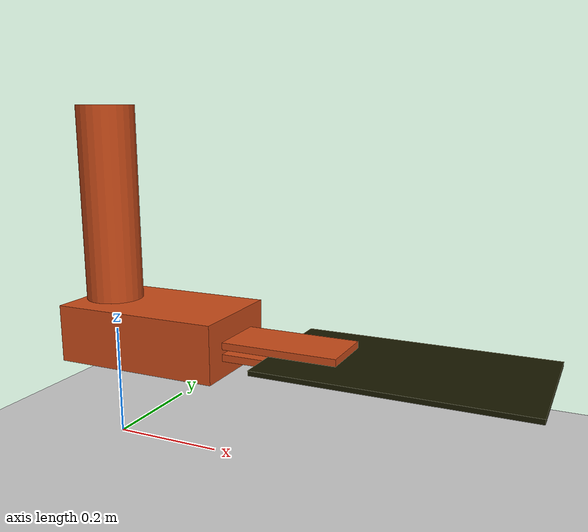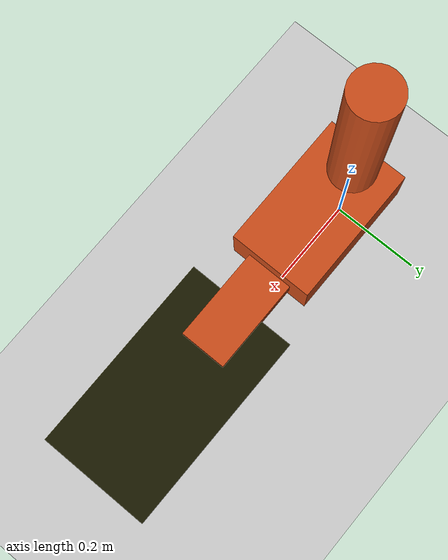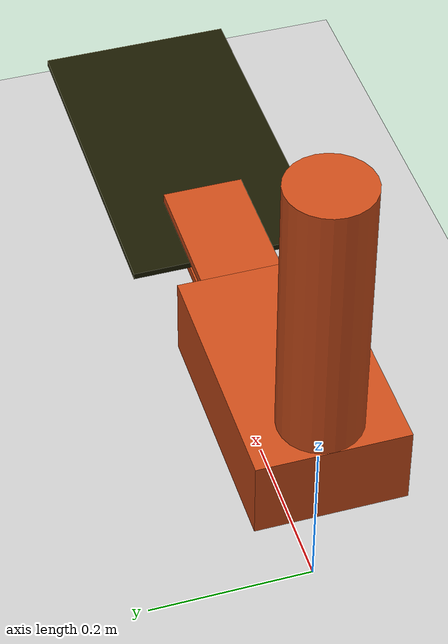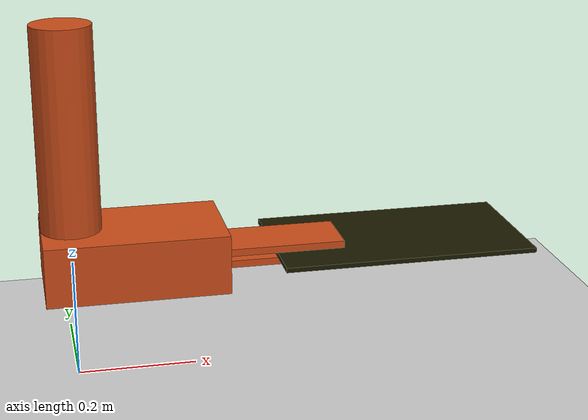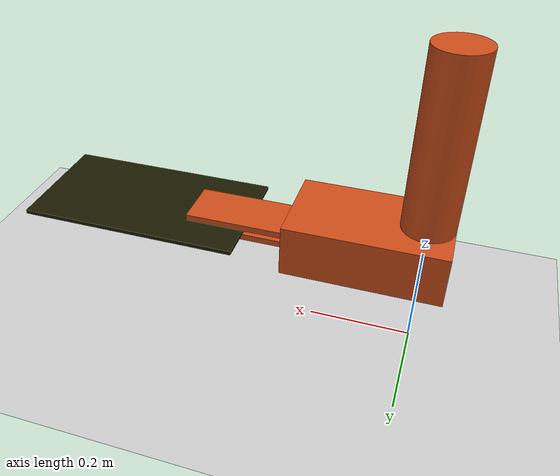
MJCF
<mujoco model="arm_claw (v1.31)">
	<compiler 	inertiafromgeom="true"
				angle="radian"/>

	<size 	nuser_jnt="1"
			nuser_geom="1"/>

	<option	timestep="0.002"
			gravity="0 0 -9.81"
			viscosity="0.00002"
			iterations="20"/>

	<asset>
		<material name="MatGnd" specular=".3" shininess=".0" reflectance="0.0" rgba=".1 .7 .1 1"/>
	</asset>

	<default>
		<joint limited="true" damping="1" stiffness="0" armature=".1" user="0"/>
		<geom solref="0.008 1" solimp="0.95 0.95 0.01" margin="0.001" user="0"/>
		<motor ctrllimited="true" ctrlrange="-1 1"/>
		<position ctrllimited="true"/>

		<default class='0'>
			<geom friction="0.75 0.004 0.001" rgba=".8 .3 .1 1" contype="1" conaffinity="0" condim="4"/>
		</default>

		<default class='1'>
			<geom friction="0.85 0.0045 0.001" rgba=".8 .4 .1 1" contype="1" conaffinity="0" condim="4"/>
		</default>

		<default class='arm'>
			<joint damping="5"/>
		</default>
	</default>

	<worldbody>
		<light directional="true" cutoff="40" exponent="10" diffuse=".4 .4 .4" specular=".5 .5 .5" pos="0 0 1.5" dir="0 0 -1"/>
		<geom name="tableTop" material="MatGnd" type="plane" pos="0.15 0 0" size="1.9 2.9 1.2" rgba="0.8 0.8 0.8 1" contype="1" conaffinity="1"/>

		<!--  ================= ARM MASTER ================= /-->
		<body name="upperarm" pos="0 0 0.6">
			<geom class="0" type="cylinder" fromto="0 0 0 0 0 -0.345" size="0.05"/>
			<joint class='arm' name="s_rotation" type="hinge" pos="0 0 0" axis="0 0 1" range="-0.785398 0.785398" user="003"/>

			<!--  ================= ARM ================= /-->
			<body name="forearm" pos="0.10 0 -0.390">
				<geom class="0" type="box"  size="0.15 .09 .05"/>

				<!--  ================= Gripper Master ================= /-->
				<body name="gripperMaster" pos="0.325 0 0.045">

					<!--  ================= UPPER GRIPPER ================= /-->
					<body name="gripper1" pos="-0.075 0.0 -0.04">
						<geom class="0" type="box" size="0.1 0.05 0.006"  rgba=".8 .3 .1 1"/>
						<joint class='arm' name="gripper" type="slide" pos="0 0 0" axis="0 0 1" range="-0.2 0.003" user="0035"/>
					</body>
					<!--  ================= LOWER GRIPPER ================= /-->
					<body name="gripper2" pos="-0.075 0.0 -0.06">
						<geom class="0" type="box" size="0.1 0.05 0.006" rgba=".8 .3 .1 1" contype="5"/>
					</body>

				</body>

			</body>

		</body>

		<!--  ================= MAIN OBJECT ================= 2 / -->
		<body name="object" pos="0.55 0 0.205">
			<geom class="1" type="box" size="0.215 .12 .004" rgba="0.1 0.1 0.0 1" conaffinity="1"/>
			<joint name="fr" type="free" limited='false' damping="0" armature="0" user="010"/>

		</body>

		<!--  ================= REFERENCE OBJECT GROUND ================= /-->
		<body name="ref_object" pos="0.35 -0.168 0.01">
			<geom class="1" type="plane" size="0.55 .17 .01" rgba="0.9 0.05 0.15 0.2" conaffinity="0" contype="0" mass="0" />

			<body name="ref2_object" pos="0 0.35 0.01">
				<geom class="1" type="plane" size="0.55 .17 .01" rgba="0.2 0.8 0.2 0.2" conaffinity="0" contype="0" mass="0" />
			</body>
		</body>

	</worldbody>

	<actuator>

		<!--  ================= O range de rotação é de mais ou menos 60° ================= / -->
		<position joint='s_rotation' 	name='As_rotation' 	kp="30" ctrlrange='-0.785398 0.785398' forcelimited='true' forcerange='-25 25'/>
		<position joint='gripper' 	name='Gripper' 	kp="90" ctrlrange='-0.2 0.003'/>
	</actuator>

</mujoco>
